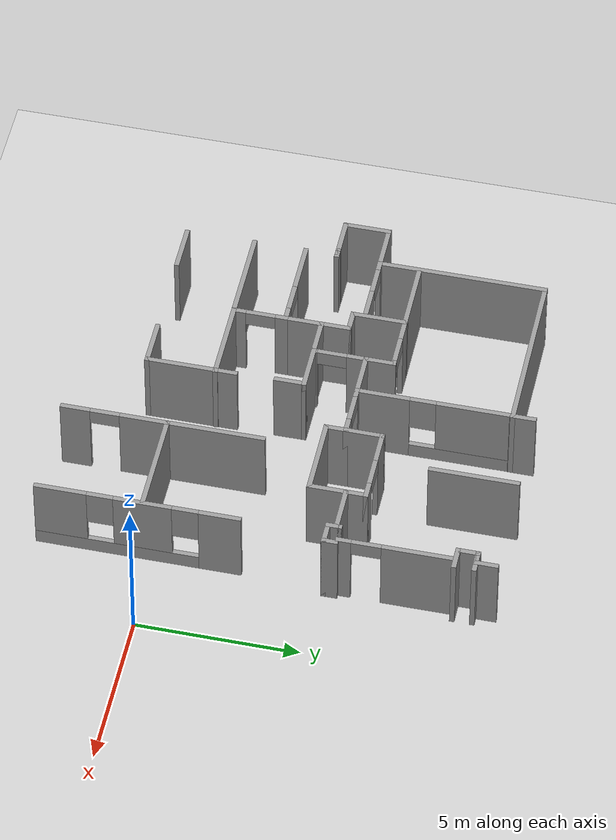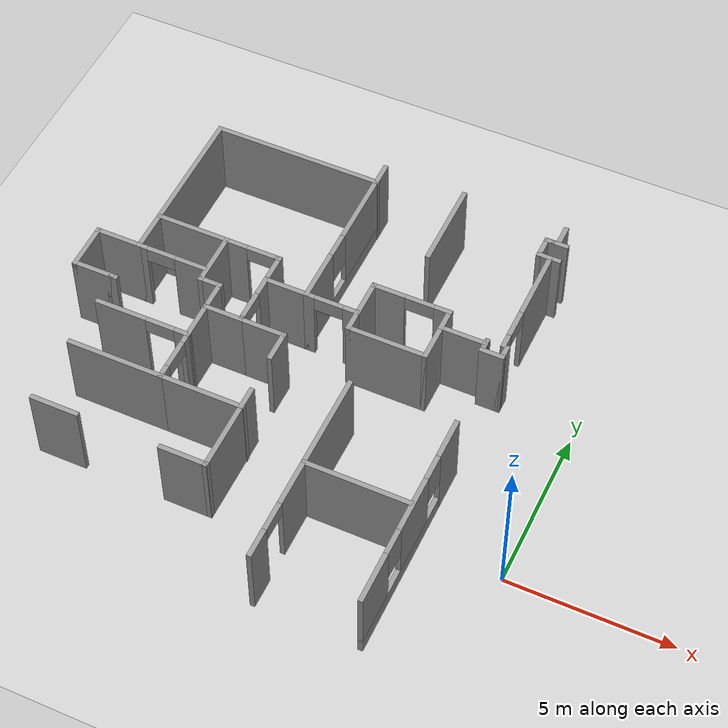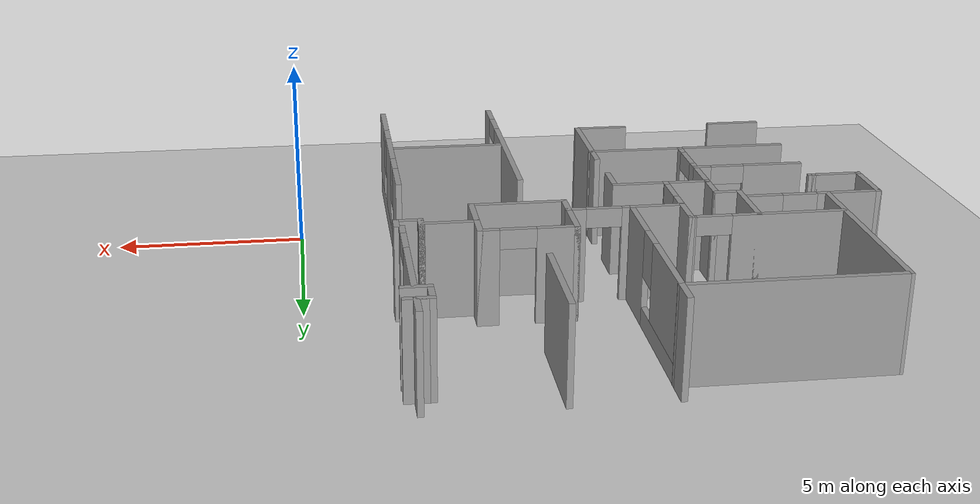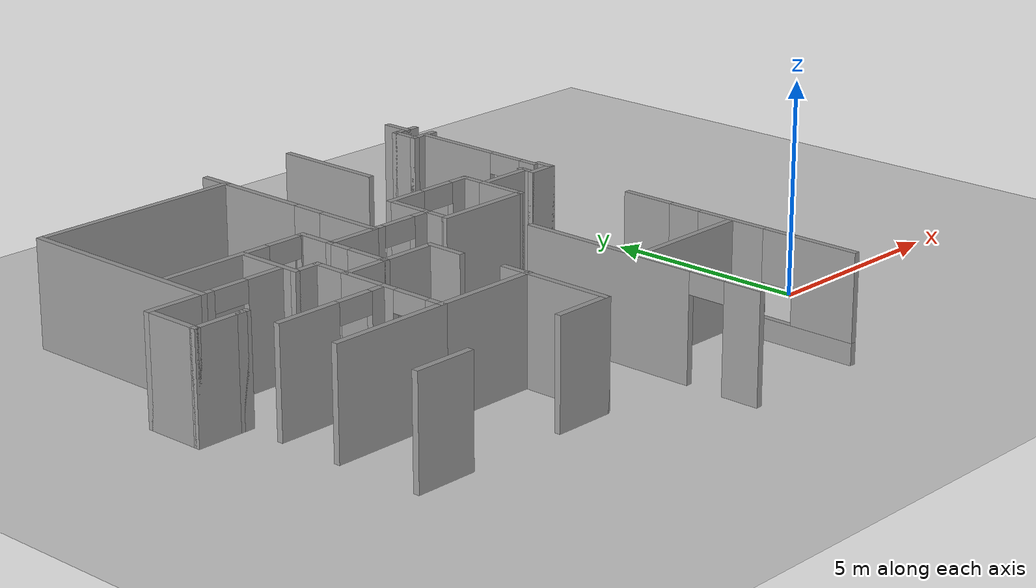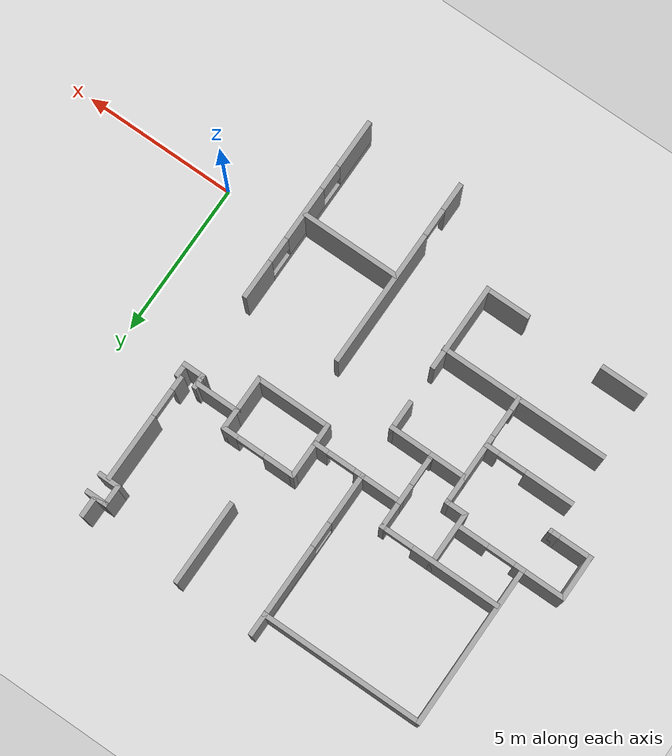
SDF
<sdf version="1.6">
 <world name="default">
  <model name="ground_plane">
   <static>1</static>
   <link name="link">
    <collision name="collision">
     <geometry><plane><normal>0 0 1</normal><size>100 100</size></plane></geometry>
     <surface><friction><ode><mu>100</mu><mu2>50</mu2></ode></friction></surface>
    </collision>
    <visual name="visual">
     <cast_shadows>0</cast_shadows>
     <geometry><plane><normal>0 0 1</normal><size>100 100</size></plane></geometry>
     <material>
      <script><uri>file://media/materials/scripts/gazebo.material</uri><name>Gazebo/Grey</name></script>
     </material>
    </visual>
   </link>
  </model>
  <model name="office02">
   <pose>-0.0751 -0.58893 0 0 -0 0</pose>
   <link name="Wall_0">
    <collision name="Wall_0_Collision">
     <geometry><box><size>5.25 0.15 2.5</size></box></geometry>
     <pose>0 0 1.25 0 -0 0</pose>
    </collision>
    <visual name="Wall_0_Visual">
     <pose>0 0 1.25 0 -0 0</pose>
     <geometry><box><size>5.25 0.15 2.5</size></box></geometry>
     <material>
      <script><uri>file://media/materials/scripts/gazebo.material</uri><name>Gazebo/Grey</name></script>
      <ambient>1 1 1 1</ambient>
     </material>
     <meta><layer>0</layer></meta>
    </visual>
    <pose>-13.3071 7.70371 0 0 -0 -1.5708</pose>
   </link>
   <link name="Wall_1">
    <collision name="Wall_1_Collision">
     <geometry><box><size>1.5 0.15 2.5</size></box></geometry>
     <pose>0 0 1.25 0 -0 0</pose>
    </collision>
    <visual name="Wall_1_Visual">
     <pose>0 0 1.25 0 -0 0</pose>
     <geometry><box><size>1.5 0.15 2.5</size></box></geometry>
     <material>
      <script><uri>file://media/materials/scripts/gazebo.material</uri><name>Gazebo/Grey</name></script>
      <ambient>1 1 1 1</ambient>
     </material>
     <meta><layer>0</layer></meta>
    </visual>
    <pose>-13.9821 5.15371 0 0 -0 3.14159</pose>
   </link>
   <link name="Wall_2">
    <collision name="Wall_2_Collision">
     <geometry><box><size>1.5 0.15 2.5</size></box></geometry>
     <pose>0 0 1.25 0 -0 0</pose>
    </collision>
    <visual name="Wall_2_Visual">
     <pose>0 0 1.25 0 -0 0</pose>
     <geometry><box><size>1.5 0.15 2.5</size></box></geometry>
     <material>
      <script><uri>file://media/materials/scripts/gazebo.material</uri><name>Gazebo/Grey</name></script>
      <ambient>1 1 1 1</ambient>
     </material>
     <meta><layer>0</layer></meta>
    </visual>
    <pose>-14.6571 4.47871 0 0 -0 -1.5708</pose>
   </link>
   <link name="Wall_21">
    <collision name="Wall_21_Collision">
     <geometry><box><size>0.801164 0.15 2.5</size></box></geometry>
     <pose>0 0 1.25 0 -0 0</pose>
    </collision>
    <visual name="Wall_21_Visual">
     <pose>0 0 1.25 0 -0 0</pose>
     <geometry><box><size>0.801164 0.15 2.5</size></box></geometry>
     <material>
      <script><uri>file://media/materials/scripts/gazebo.material</uri><name>Gazebo/Grey</name></script>
      <ambient>1 1 1 1</ambient>
     </material>
     <meta><layer>0</layer></meta>
    </visual>
    <pose>-8.11981 10.5707 0 0 -0 -1.5708</pose>
   </link>
   <link name="Wall_22">
    <collision name="Wall_22_Collision">
     <geometry><box><size>5.25 0.15 2.5</size></box></geometry>
     <pose>0 0 1.25 0 -0 0</pose>
    </collision>
    <visual name="Wall_22_Visual">
     <pose>0 0 1.25 0 -0 0</pose>
     <geometry><box><size>5.25 0.15 2.5</size></box></geometry>
     <material>
      <script><uri>file://media/materials/scripts/gazebo.material</uri><name>Gazebo/Grey</name></script>
      <ambient>1 1 1 1</ambient>
     </material>
     <meta><layer>0</layer></meta>
    </visual>
    <pose>-10.6698 10.2604 0 0 -0 3.14159</pose>
   </link>
   <link name="Wall_232">
    <pose>-7.32824 5.53282 0 0 -0 0</pose>
    <visual name="Wall_232_Visual_0">
     <pose>-0.707202 0 1.25 0 -0 0</pose>
     <geometry><box><size>0.335596 0.15 2.5</size></box></geometry>
     <material>
      <script><uri>file://media/materials/scripts/gazebo.material</uri><name>Gazebo/Grey</name></script>
      <ambient>1 1 1 1</ambient>
     </material>
     <meta><layer>0</layer></meta>
    </visual>
    <collision name="Wall_232_Collision_0">
     <geometry><box><size>0.335596 0.15 2.5</size></box></geometry>
     <pose>-0.707202 0 1.25 0 -0 0</pose>
    </collision>
    <visual name="Wall_232_Visual_1">
     <pose>0.617798 0 1.25 0 -0 0</pose>
     <geometry><box><size>0.514404 0.15 2.5</size></box></geometry>
     <material>
      <script><uri>file://media/materials/scripts/gazebo.material</uri><name>Gazebo/Grey</name></script>
      <ambient>1 1 1 1</ambient>
     </material>
     <meta><layer>0</layer></meta>
    </visual>
    <collision name="Wall_232_Collision_1">
     <geometry><box><size>0.514404 0.15 2.5</size></box></geometry>
     <pose>0.617798 0 1.25 0 -0 0</pose>
    </collision>
    <visual name="Wall_232_Visual_2">
     <pose>-0.089404 0 2.25 0 -0 0</pose>
     <geometry><box><size>0.9 0.15 0.5</size></box></geometry>
     <material>
      <script><uri>file://media/materials/scripts/gazebo.material</uri><name>Gazebo/Grey</name></script>
      <ambient>1 1 1 1</ambient>
     </material>
     <meta><layer>0</layer></meta>
    </visual>
    <collision name="Wall_232_Collision_2">
     <geometry><box><size>0.9 0.15 0.5</size></box></geometry>
     <pose>-0.089404 0 2.25 0 -0 0</pose>
    </collision>
   </link>
   <link name="Wall_233">
    <collision name="Wall_233_Collision">
     <geometry><box><size>0.75 0.15 2.5</size></box></geometry>
     <pose>0 0 1.25 0 -0 0</pose>
    </collision>
    <visual name="Wall_233_Visual">
     <pose>0 0 1.25 0 -0 0</pose>
     <geometry><box><size>0.75 0.15 2.5</size></box></geometry>
     <material>
      <script><uri>file://media/materials/scripts/gazebo.material</uri><name>Gazebo/Grey</name></script>
      <ambient>1 1 1 1</ambient>
     </material>
     <meta><layer>0</layer></meta>
    </visual>
    <pose>-6.52824 5.23282 0 0 -0 -1.5708</pose>
   </link>
   <link name="Wall_234">
    <collision name="Wall_234_Collision">
     <geometry><box><size>2.5 0.15 2.5</size></box></geometry>
     <pose>0 0 1.25 0 -0 0</pose>
    </collision>
    <visual name="Wall_234_Visual">
     <pose>0 0 1.25 0 -0 0</pose>
     <geometry><box><size>2.5 0.15 2.5</size></box></geometry>
     <material>
      <script><uri>file://media/materials/scripts/gazebo.material</uri><name>Gazebo/Grey</name></script>
      <ambient>1 1 1 1</ambient>
     </material>
     <meta><layer>0</layer></meta>
    </visual>
    <pose>-5.35324 4.93282 0 0 -0 0</pose>
   </link>
   <link name="Wall_235">
    <collision name="Wall_235_Collision">
     <geometry><box><size>1.25 0.15 2.5</size></box></geometry>
     <pose>0 0 1.25 0 -0 0</pose>
    </collision>
    <visual name="Wall_235_Visual">
     <pose>0 0 1.25 0 -0 0</pose>
     <geometry><box><size>1.25 0.15 2.5</size></box></geometry>
     <material>
      <script><uri>file://media/materials/scripts/gazebo.material</uri><name>Gazebo/Grey</name></script>
      <ambient>1 1 1 1</ambient>
     </material>
     <meta><layer>0</layer></meta>
    </visual>
    <pose>-4.17824 5.48282 0 0 -0 1.5708</pose>
   </link>
   <link name="Wall_236">
    <collision name="Wall_236_Collision">
     <geometry><box><size>1.5 0.15 2.5</size></box></geometry>
     <pose>0 0 1.25 0 -0 0</pose>
    </collision>
    <visual name="Wall_236_Visual">
     <pose>0 0 1.25 0 -0 0</pose>
     <geometry><box><size>1.5 0.15 2.5</size></box></geometry>
     <material>
      <script><uri>file://media/materials/scripts/gazebo.material</uri><name>Gazebo/Grey</name></script>
      <ambient>1 1 1 1</ambient>
     </material>
     <meta><layer>0</layer></meta>
    </visual>
    <pose>-3.50324 6.03282 0 0 -0 0</pose>
   </link>
   <link name="Wall_237">
    <collision name="Wall_237_Collision">
     <geometry><box><size>0.25 0.15 2.5</size></box></geometry>
     <pose>0 0 1.25 0 -0 0</pose>
    </collision>
    <visual name="Wall_237_Visual">
     <pose>0 0 1.25 0 -0 0</pose>
     <geometry><box><size>0.25 0.15 2.5</size></box></geometry>
     <material>
      <script><uri>file://media/materials/scripts/gazebo.material</uri><name>Gazebo/Grey</name></script>
      <ambient>1 1 1 1</ambient>
     </material>
     <meta><layer>0</layer></meta>
    </visual>
    <pose>-2.82824 6.08282 0 0 -0 1.5708</pose>
   </link>
   <link name="Wall_241">
    <collision name="Wall_241_Collision">
     <geometry><box><size>0.5 0.15 2.5</size></box></geometry>
     <pose>0 0 1.25 0 -0 0</pose>
    </collision>
    <visual name="Wall_241_Visual">
     <pose>0 0 1.25 0 -0 0</pose>
     <geometry><box><size>0.5 0.15 2.5</size></box></geometry>
     <material>
      <script><uri>file://media/materials/scripts/gazebo.material</uri><name>Gazebo/Grey</name></script>
      <ambient>1 1 1 1</ambient>
     </material>
     <meta><layer>0</layer></meta>
    </visual>
    <pose>-2.82824 5.95782 0 0 -0 1.5708</pose>
   </link>
   <link name="Wall_266">
    <collision name="Wall_266_Collision">
     <geometry><box><size>0.75 0.15 2.5</size></box></geometry>
     <pose>0 0 1.25 0 -0 0</pose>
    </collision>
    <visual name="Wall_266_Visual">
     <pose>0 0 1.25 0 -0 0</pose>
     <geometry><box><size>0.75 0.15 2.5</size></box></geometry>
     <material>
      <script><uri>file://media/materials/scripts/gazebo.material</uri><name>Gazebo/Grey</name></script>
      <ambient>1 1 1 1</ambient>
     </material>
     <meta><layer>0</layer></meta>
    </visual>
    <pose>-2.34465 10.5772 0 0 -0 -1.5708</pose>
   </link>
   <link name="Wall_267">
    <collision name="Wall_267_Collision">
     <geometry><box><size>0.5 0.15 2.5</size></box></geometry>
     <pose>0 0 1.25 0 -0 0</pose>
    </collision>
    <visual name="Wall_267_Visual">
     <pose>0 0 1.25 0 -0 0</pose>
     <geometry><box><size>0.5 0.15 2.5</size></box></geometry>
     <material>
      <script><uri>file://media/materials/scripts/gazebo.material</uri><name>Gazebo/Grey</name></script>
      <ambient>1 1 1 1</ambient>
     </material>
     <meta><layer>0</layer></meta>
    </visual>
    <pose>-2.51965 10.2772 0 0 -0 3.14159</pose>
   </link>
   <link name="Wall_268">
    <collision name="Wall_268_Collision">
     <geometry><box><size>0.75 0.15 2.5</size></box></geometry>
     <pose>0 0 1.25 0 -0 0</pose>
    </collision>
    <visual name="Wall_268_Visual">
     <pose>0 0 1.25 0 -0 0</pose>
     <geometry><box><size>0.75 0.15 2.5</size></box></geometry>
     <material>
      <script><uri>file://media/materials/scripts/gazebo.material</uri><name>Gazebo/Grey</name></script>
      <ambient>1 1 1 1</ambient>
     </material>
     <meta><layer>0</layer></meta>
    </visual>
    <pose>-2.39465 10.2772 0 0 -0 0</pose>
   </link>
   <link name="Wall_27">
    <pose>-11.3335 6.38282 0 0 -0 0</pose>
    <visual name="Wall_27_Visual_0">
     <pose>-0.546613 0 1.25 0 -0 0</pose>
     <geometry><box><size>2.90677 0.15 2.5</size></box></geometry>
     <material>
      <script><uri>file://media/materials/scripts/gazebo.material</uri><name>Gazebo/Grey</name></script>
      <ambient>1 1 1 1</ambient>
     </material>
     <meta><layer>0</layer></meta>
    </visual>
    <collision name="Wall_27_Collision_0">
     <geometry><box><size>2.90677 0.15 2.5</size></box></geometry>
     <pose>-0.546613 0 1.25 0 -0 0</pose>
    </collision>
    <visual name="Wall_27_Visual_1">
     <pose>1.90339 0 1.25 0 -0 0</pose>
     <geometry><box><size>0.193226 0.15 2.5</size></box></geometry>
     <material>
      <script><uri>file://media/materials/scripts/gazebo.material</uri><name>Gazebo/Grey</name></script>
      <ambient>1 1 1 1</ambient>
     </material>
     <meta><layer>0</layer></meta>
    </visual>
    <collision name="Wall_27_Collision_1">
     <geometry><box><size>0.193226 0.15 2.5</size></box></geometry>
     <pose>1.90339 0 1.25 0 -0 0</pose>
    </collision>
    <visual name="Wall_27_Visual_2">
     <pose>1.35677 0 2.25 0 -0 0</pose>
     <geometry><box><size>0.9 0.15 0.5</size></box></geometry>
     <material>
      <script><uri>file://media/materials/scripts/gazebo.material</uri><name>Gazebo/Grey</name></script>
      <ambient>1 1 1 1</ambient>
     </material>
     <meta><layer>0</layer></meta>
    </visual>
    <collision name="Wall_27_Collision_2">
     <geometry><box><size>0.9 0.15 0.5</size></box></geometry>
     <pose>1.35677 0 2.25 0 -0 0</pose>
    </collision>
   </link>
   <link name="Wall_270">
    <collision name="Wall_270_Collision">
     <geometry><box><size>0.75 0.15 2.5</size></box></geometry>
     <pose>0 0 1.25 0 -0 0</pose>
    </collision>
    <visual name="Wall_270_Visual">
     <pose>0 0 1.25 0 -0 0</pose>
     <geometry><box><size>0.75 0.15 2.5</size></box></geometry>
     <material>
      <script><uri>file://media/materials/scripts/gazebo.material</uri><name>Gazebo/Grey</name></script>
      <ambient>1 1 1 1</ambient>
     </material>
     <meta><layer>0</layer></meta>
    </visual>
    <pose>-2.39465 9.67721 0 0 -0 3.14159</pose>
   </link>
   <link name="Wall_271">
    <collision name="Wall_271_Collision">
     <geometry><box><size>0.75 0.15 2.5</size></box></geometry>
     <pose>0 0 1.25 0 -0 0</pose>
    </collision>
    <visual name="Wall_271_Visual">
     <pose>0 0 1.25 0 -0 0</pose>
     <geometry><box><size>0.75 0.15 2.5</size></box></geometry>
     <material>
      <script><uri>file://media/materials/scripts/gazebo.material</uri><name>Gazebo/Grey</name></script>
      <ambient>1 1 1 1</ambient>
     </material>
     <meta><layer>0</layer></meta>
    </visual>
    <pose>-2.69465 9.97721 0 0 -0 1.5708</pose>
   </link>
   <link name="Wall_276">
    <pose>-2.3487 7.89087 0 0 -0 -1.5708</pose>
    <visual name="Wall_276_Visual_0">
     <pose>-0.684647 0 1.25 0 -0 0</pose>
     <geometry><box><size>2.20171 0.15 2.5</size></box></geometry>
     <material>
      <script><uri>file://media/materials/scripts/gazebo.material</uri><name>Gazebo/Grey</name></script>
      <ambient>1 1 1 1</ambient>
     </material>
     <meta><layer>0</layer></meta>
    </visual>
    <collision name="Wall_276_Collision_0">
     <geometry><box><size>2.20171 0.15 2.5</size></box></geometry>
     <pose>-0.684647 0 1.25 0 -0 0</pose>
    </collision>
    <visual name="Wall_276_Visual_1">
     <pose>1.55085 0 1.25 0 -0 0</pose>
     <geometry><box><size>0.469293 0.15 2.5</size></box></geometry>
     <material>
      <script><uri>file://media/materials/scripts/gazebo.material</uri><name>Gazebo/Grey</name></script>
      <ambient>1 1 1 1</ambient>
     </material>
     <meta><layer>0</layer></meta>
    </visual>
    <collision name="Wall_276_Collision_1">
     <geometry><box><size>0.469293 0.15 2.5</size></box></geometry>
     <pose>1.55085 0 1.25 0 -0 0</pose>
    </collision>
    <visual name="Wall_276_Visual_2">
     <pose>0.866207 0 2.25 0 -0 0</pose>
     <geometry><box><size>0.9 0.15 0.5</size></box></geometry>
     <material>
      <script><uri>file://media/materials/scripts/gazebo.material</uri><name>Gazebo/Grey</name></script>
      <ambient>1 1 1 1</ambient>
     </material>
     <meta><layer>0</layer></meta>
    </visual>
    <collision name="Wall_276_Collision_2">
     <geometry><box><size>0.9 0.15 0.5</size></box></geometry>
     <pose>0.866207 0 2.25 0 -0 0</pose>
    </collision>
   </link>
   <link name="Wall_28">
    <collision name="Wall_28_Collision">
     <geometry><box><size>1 0.15 2.5</size></box></geometry>
     <pose>0 0 1.25 0 -0 0</pose>
    </collision>
    <visual name="Wall_28_Visual">
     <pose>0 0 1.25 0 -0 0</pose>
     <geometry><box><size>1 0.15 2.5</size></box></geometry>
     <material>
      <script><uri>file://media/materials/scripts/gazebo.material</uri><name>Gazebo/Grey</name></script>
      <ambient>1 1 1 1</ambient>
     </material>
     <meta><layer>0</layer></meta>
    </visual>
    <pose>-9.40845 5.95782 0 0 -0 -1.5708</pose>
   </link>
   <link name="Wall_280">
    <collision name="Wall_280_Collision">
     <geometry><box><size>0.75 0.15 2.5</size></box></geometry>
     <pose>0 0 1.25 0 -0 0</pose>
    </collision>
    <visual name="Wall_280_Visual">
     <pose>0 0 1.25 0 -0 0</pose>
     <geometry><box><size>0.75 0.15 2.5</size></box></geometry>
     <material>
      <script><uri>file://media/materials/scripts/gazebo.material</uri><name>Gazebo/Grey</name></script>
      <ambient>1 1 1 1</ambient>
     </material>
     <meta><layer>0</layer></meta>
    </visual>
    <pose>-2.52824 5.78282 0 0 -0 0</pose>
   </link>
   <link name="Wall_281">
    <collision name="Wall_281_Collision">
     <geometry><box><size>0.5 0.15 2.5</size></box></geometry>
     <pose>0 0 1.25 0 -0 0</pose>
    </collision>
    <visual name="Wall_281_Visual">
     <pose>0 0 1.25 0 -0 0</pose>
     <geometry><box><size>0.5 0.15 2.5</size></box></geometry>
     <material>
      <script><uri>file://media/materials/scripts/gazebo.material</uri><name>Gazebo/Grey</name></script>
      <ambient>1 1 1 1</ambient>
     </material>
     <meta><layer>0</layer></meta>
    </visual>
    <pose>-2.22824 5.95782 0 0 -0 1.5708</pose>
   </link>
   <link name="Wall_283">
    <collision name="Wall_283_Collision">
     <geometry><box><size>1.25 0.15 2.5</size></box></geometry>
     <pose>0 0 1.25 0 -0 0</pose>
    </collision>
    <visual name="Wall_283_Visual">
     <pose>0 0 1.25 0 -0 0</pose>
     <geometry><box><size>1.25 0.15 2.5</size></box></geometry>
     <material>
      <script><uri>file://media/materials/scripts/gazebo.material</uri><name>Gazebo/Grey</name></script>
      <ambient>1 1 1 1</ambient>
     </material>
     <meta><layer>0</layer></meta>
    </visual>
    <pose>-6.52824 6.08282 0 0 -0 1.5708</pose>
   </link>
   <link name="Wall_284">
    <pose>-5.35324 6.63282 0 0 -0 0</pose>
    <visual name="Wall_284_Visual_0">
     <pose>-0.721303 0 1.25 0 -0 0</pose>
     <geometry><box><size>1.0574 0.15 2.5</size></box></geometry>
     <material>
      <script><uri>file://media/materials/scripts/gazebo.material</uri><name>Gazebo/Grey</name></script>
      <ambient>1 1 1 1</ambient>
     </material>
     <meta><layer>0</layer></meta>
    </visual>
    <collision name="Wall_284_Collision_0">
     <geometry><box><size>1.0574 0.15 2.5</size></box></geometry>
     <pose>-0.721303 0 1.25 0 -0 0</pose>
    </collision>
    <visual name="Wall_284_Visual_1">
     <pose>0.978697 0 1.25 0 -0 0</pose>
     <geometry><box><size>0.542605 0.15 2.5</size></box></geometry>
     <material>
      <script><uri>file://media/materials/scripts/gazebo.material</uri><name>Gazebo/Grey</name></script>
      <ambient>1 1 1 1</ambient>
     </material>
     <meta><layer>0</layer></meta>
    </visual>
    <collision name="Wall_284_Collision_1">
     <geometry><box><size>0.542605 0.15 2.5</size></box></geometry>
     <pose>0.978697 0 1.25 0 -0 0</pose>
    </collision>
    <visual name="Wall_284_Visual_2">
     <pose>0.257395 0 2.25 0 -0 0</pose>
     <geometry><box><size>0.9 0.15 0.5</size></box></geometry>
     <material>
      <script><uri>file://media/materials/scripts/gazebo.material</uri><name>Gazebo/Grey</name></script>
      <ambient>1 1 1 1</ambient>
     </material>
     <meta><layer>0</layer></meta>
    </visual>
    <collision name="Wall_284_Collision_2">
     <geometry><box><size>0.9 0.15 0.5</size></box></geometry>
     <pose>0.257395 0 2.25 0 -0 0</pose>
    </collision>
   </link>
   <link name="Wall_285">
    <collision name="Wall_285_Collision">
     <geometry><box><size>0.75 0.15 2.5</size></box></geometry>
     <pose>0 0 1.25 0 -0 0</pose>
    </collision>
    <visual name="Wall_285_Visual">
     <pose>0 0 1.25 0 -0 0</pose>
     <geometry><box><size>0.75 0.15 2.5</size></box></geometry>
     <material>
      <script><uri>file://media/materials/scripts/gazebo.material</uri><name>Gazebo/Grey</name></script>
      <ambient>1 1 1 1</ambient>
     </material>
     <meta><layer>0</layer></meta>
    </visual>
    <pose>-4.17824 6.33282 0 0 -0 -1.5708</pose>
   </link>
   <link name="Wall_287">
    <collision name="Wall_287_Collision">
     <geometry><box><size>2.75 0.15 2.5</size></box></geometry>
     <pose>0 0 1.25 0 -0 0</pose>
    </collision>
    <visual name="Wall_287_Visual">
     <pose>0 0 1.25 0 -0 0</pose>
     <geometry><box><size>2.75 0.15 2.5</size></box></geometry>
     <material>
      <script><uri>file://media/materials/scripts/gazebo.material</uri><name>Gazebo/Grey</name></script>
      <ambient>1 1 1 1</ambient>
     </material>
     <meta><layer>0</layer></meta>
    </visual>
    <pose>-5.57076 9.59432 0 0 -0 -1.5708</pose>
   </link>
   <link name="Wall_29">
    <collision name="Wall_29_Collision">
     <geometry><box><size>1.40695 0.15 2.5</size></box></geometry>
     <pose>0 0 1.25 0 -0 0</pose>
    </collision>
    <visual name="Wall_29_Visual">
     <pose>0 0 1.25 0 -0 0</pose>
     <geometry><box><size>1.40695 0.15 2.5</size></box></geometry>
     <material>
      <script><uri>file://media/materials/scripts/gazebo.material</uri><name>Gazebo/Grey</name></script>
      <ambient>1 1 1 1</ambient>
     </material>
     <meta><layer>0</layer></meta>
    </visual>
    <pose>-8.77998 5.53282 0 0 -0 0</pose>
   </link>
   <link name="Wall_290">
    <pose>-5.67673 0.155497 0 0 -0 -1.5708</pose>
    <visual name="Wall_290_Visual_0">
     <pose>-0.907056 0 1.25 0 -0 0</pose>
     <geometry><box><size>4.43589 0.15 2.5</size></box></geometry>
     <material>
      <script><uri>file://media/materials/scripts/gazebo.material</uri><name>Gazebo/Grey</name></script>
      <ambient>1 1 1 1</ambient>
     </material>
     <meta><layer>0</layer></meta>
    </visual>
    <collision name="Wall_290_Collision_0">
     <geometry><box><size>4.43589 0.15 2.5</size></box></geometry>
     <pose>-0.907056 0 1.25 0 -0 0</pose>
    </collision>
    <visual name="Wall_290_Visual_1">
     <pose>2.66794 0 1.25 0 -0 0</pose>
     <geometry><box><size>0.914112 0.15 2.5</size></box></geometry>
     <material>
      <script><uri>file://media/materials/scripts/gazebo.material</uri><name>Gazebo/Grey</name></script>
      <ambient>1 1 1 1</ambient>
     </material>
     <meta><layer>0</layer></meta>
    </visual>
    <collision name="Wall_290_Collision_1">
     <geometry><box><size>0.914112 0.15 2.5</size></box></geometry>
     <pose>2.66794 0 1.25 0 -0 0</pose>
    </collision>
    <visual name="Wall_290_Visual_2">
     <pose>1.76089 0 2.25 0 -0 0</pose>
     <geometry><box><size>0.9 0.15 0.5</size></box></geometry>
     <material>
      <script><uri>file://media/materials/scripts/gazebo.material</uri><name>Gazebo/Grey</name></script>
      <ambient>1 1 1 1</ambient>
     </material>
     <meta><layer>0</layer></meta>
    </visual>
    <collision name="Wall_290_Collision_2">
     <geometry><box><size>0.9 0.15 0.5</size></box></geometry>
     <pose>1.76089 0 2.25 0 -0 0</pose>
    </collision>
   </link>
   <link name="Wall_3">
    <collision name="Wall_3_Collision">
     <geometry><box><size>1.25 0.15 2.5</size></box></geometry>
     <pose>0 0 1.25 0 -0 0</pose>
    </collision>
    <visual name="Wall_3_Visual">
     <pose>0 0 1.25 0 -0 0</pose>
     <geometry><box><size>1.25 0.15 2.5</size></box></geometry>
     <material>
      <script><uri>file://media/materials/scripts/gazebo.material</uri><name>Gazebo/Grey</name></script>
      <ambient>1 1 1 1</ambient>
     </material>
     <meta><layer>0</layer></meta>
    </visual>
    <pose>-14.1071 3.80371 0 0 -0 0</pose>
   </link>
   <link name="Wall_30">
    <pose>-8.12824 7.83282 0 0 -0 1.5708</pose>
    <visual name="Wall_30_Visual_0">
     <pose>-1.53214 0 1.25 0 -0 0</pose>
     <geometry><box><size>1.68571 0.15 2.5</size></box></geometry>
     <material>
      <script><uri>file://media/materials/scripts/gazebo.material</uri><name>Gazebo/Grey</name></script>
      <ambient>1 1 1 1</ambient>
     </material>
     <meta><layer>0</layer></meta>
    </visual>
    <collision name="Wall_30_Collision_0">
     <geometry><box><size>1.68571 0.15 2.5</size></box></geometry>
     <pose>-1.53214 0 1.25 0 -0 0</pose>
    </collision>
    <visual name="Wall_30_Visual_1">
     <pose>0.842857 0 0.25 0 -0 0</pose>
     <geometry><box><size>3.06429 0.15 0.5</size></box></geometry>
     <material>
      <script><uri>file://media/materials/scripts/gazebo.material</uri><name>Gazebo/Grey</name></script>
      <ambient>1 1 1 1</ambient>
     </material>
     <meta><layer>0</layer></meta>
    </visual>
    <collision name="Wall_30_Collision_1">
     <geometry><box><size>3.06429 0.15 0.5</size></box></geometry>
     <pose>0.842857 0 0.25 0 -0 0</pose>
    </collision>
    <visual name="Wall_30_Visual_2">
     <pose>1.24286 0 1.5 0 -0 0</pose>
     <geometry><box><size>2.26429 0.15 2</size></box></geometry>
     <material>
      <script><uri>file://media/materials/scripts/gazebo.material</uri><name>Gazebo/Grey</name></script>
      <ambient>1 1 1 1</ambient>
     </material>
     <meta><layer>0</layer></meta>
    </visual>
    <collision name="Wall_30_Collision_2">
     <geometry><box><size>2.26429 0.15 2</size></box></geometry>
     <pose>1.24286 0 1.5 0 -0 0</pose>
    </collision>
    <visual name="Wall_30_Visual_3">
     <pose>-0.289286 0 1.9 0 -0 0</pose>
     <geometry><box><size>0.8 0.15 1.2</size></box></geometry>
     <material>
      <script><uri>file://media/materials/scripts/gazebo.material</uri><name>Gazebo/Grey</name></script>
      <ambient>1 1 1 1</ambient>
     </material>
     <meta><layer>0</layer></meta>
    </visual>
    <collision name="Wall_30_Collision_3">
     <geometry><box><size>0.8 0.15 1.2</size></box></geometry>
     <pose>-0.289286 0 1.9 0 -0 0</pose>
    </collision>
   </link>
   <link name="Wall_309">
    <pose>-2.49025 0.138825 0 0 -0 -1.5708</pose>
    <visual name="Wall_309_Visual_0">
     <pose>-2.48209 0 1.25 0 -0 0</pose>
     <geometry><box><size>1.28582 0.15 2.5</size></box></geometry>
     <material>
      <script><uri>file://media/materials/scripts/gazebo.material</uri><name>Gazebo/Grey</name></script>
      <ambient>1 1 1 1</ambient>
     </material>
     <meta><layer>0</layer></meta>
    </visual>
    <collision name="Wall_309_Collision_0">
     <geometry><box><size>1.28582 0.15 2.5</size></box></geometry>
     <pose>-2.48209 0 1.25 0 -0 0</pose>
    </collision>
    <visual name="Wall_309_Visual_1">
     <pose>0.642909 0 0.25 0 -0 0</pose>
     <geometry><box><size>4.96418 0.15 0.5</size></box></geometry>
     <material>
      <script><uri>file://media/materials/scripts/gazebo.material</uri><name>Gazebo/Grey</name></script>
      <ambient>1 1 1 1</ambient>
     </material>
     <meta><layer>0</layer></meta>
    </visual>
    <collision name="Wall_309_Collision_1">
     <geometry><box><size>4.96418 0.15 0.5</size></box></geometry>
     <pose>0.642909 0 0.25 0 -0 0</pose>
    </collision>
    <visual name="Wall_309_Visual_2">
     <pose>-0.155122 0 1.5 0 -0 0</pose>
     <geometry><box><size>1.76812 0.15 2</size></box></geometry>
     <material>
      <script><uri>file://media/materials/scripts/gazebo.material</uri><name>Gazebo/Grey</name></script>
      <ambient>1 1 1 1</ambient>
     </material>
     <meta><layer>0</layer></meta>
    </visual>
    <collision name="Wall_309_Collision_2">
     <geometry><box><size>1.76812 0.15 2</size></box></geometry>
     <pose>-0.155122 0 1.5 0 -0 0</pose>
    </collision>
    <visual name="Wall_309_Visual_3">
     <pose>2.32697 0 1.5 0 -0 0</pose>
     <geometry><box><size>1.59606 0.15 2</size></box></geometry>
     <material>
      <script><uri>file://media/materials/scripts/gazebo.material</uri><name>Gazebo/Grey</name></script>
      <ambient>1 1 1 1</ambient>
     </material>
     <meta><layer>0</layer></meta>
    </visual>
    <collision name="Wall_309_Collision_3">
     <geometry><box><size>1.59606 0.15 2</size></box></geometry>
     <pose>2.32697 0 1.5 0 -0 0</pose>
    </collision>
    <visual name="Wall_309_Visual_4">
     <pose>-1.43918 0 1.9 0 -0 0</pose>
     <geometry><box><size>0.8 0.15 1.2</size></box></geometry>
     <material>
      <script><uri>file://media/materials/scripts/gazebo.material</uri><name>Gazebo/Grey</name></script>
      <ambient>1 1 1 1</ambient>
     </material>
     <meta><layer>0</layer></meta>
    </visual>
    <collision name="Wall_309_Collision_4">
     <geometry><box><size>0.8 0.15 1.2</size></box></geometry>
     <pose>-1.43918 0 1.9 0 -0 0</pose>
    </collision>
    <visual name="Wall_309_Visual_5">
     <pose>1.12894 0 1.9 0 -0 0</pose>
     <geometry><box><size>0.8 0.15 1.2</size></box></geometry>
     <material>
      <script><uri>file://media/materials/scripts/gazebo.material</uri><name>Gazebo/Grey</name></script>
      <ambient>1 1 1 1</ambient>
     </material>
     <meta><layer>0</layer></meta>
    </visual>
    <collision name="Wall_309_Collision_5">
     <geometry><box><size>0.8 0.15 1.2</size></box></geometry>
     <pose>1.12894 0 1.9 0 -0 0</pose>
    </collision>
   </link>
   <link name="Wall_313">
    <collision name="Wall_313_Collision">
     <geometry><box><size>3.25 0.15 2.5</size></box></geometry>
     <pose>0 0 1.25 0 -0 0</pose>
    </collision>
    <visual name="Wall_313_Visual">
     <pose>0 0 1.25 0 -0 0</pose>
     <geometry><box><size>3.25 0.15 2.5</size></box></geometry>
     <material>
      <script><uri>file://media/materials/scripts/gazebo.material</uri><name>Gazebo/Grey</name></script>
      <ambient>1 1 1 1</ambient>
     </material>
     <meta><layer>0</layer></meta>
    </visual>
    <pose>-4.10851 0.293947 0 0 -0 0</pose>
   </link>
   <link name="Wall_32">
    <pose>-9.40845 4.73282 0 0 -0 -1.5708</pose>
    <visual name="Wall_32_Visual_0">
     <pose>-0.548225 0 1.25 0 -0 0</pose>
     <geometry><box><size>0.653549 0.15 2.5</size></box></geometry>
     <material>
      <script><uri>file://media/materials/scripts/gazebo.material</uri><name>Gazebo/Grey</name></script>
      <ambient>1 1 1 1</ambient>
     </material>
     <meta><layer>0</layer></meta>
    </visual>
    <collision name="Wall_32_Collision_0">
     <geometry><box><size>0.653549 0.15 2.5</size></box></geometry>
     <pose>-0.548225 0 1.25 0 -0 0</pose>
    </collision>
    <visual name="Wall_32_Visual_1">
     <pose>0.776775 0 1.25 0 -0 0</pose>
     <geometry><box><size>0.196451 0.15 2.5</size></box></geometry>
     <material>
      <script><uri>file://media/materials/scripts/gazebo.material</uri><name>Gazebo/Grey</name></script>
      <ambient>1 1 1 1</ambient>
     </material>
     <meta><layer>0</layer></meta>
    </visual>
    <collision name="Wall_32_Collision_1">
     <geometry><box><size>0.196451 0.15 2.5</size></box></geometry>
     <pose>0.776775 0 1.25 0 -0 0</pose>
    </collision>
    <visual name="Wall_32_Visual_2">
     <pose>0.228549 0 2.25 0 -0 0</pose>
     <geometry><box><size>0.9 0.15 0.5</size></box></geometry>
     <material>
      <script><uri>file://media/materials/scripts/gazebo.material</uri><name>Gazebo/Grey</name></script>
      <ambient>1 1 1 1</ambient>
     </material>
     <meta><layer>0</layer></meta>
    </visual>
    <collision name="Wall_32_Collision_2">
     <geometry><box><size>0.9 0.15 0.5</size></box></geometry>
     <pose>0.228549 0 2.25 0 -0 0</pose>
    </collision>
   </link>
   <link name="Wall_33">
    <collision name="Wall_33_Collision">
     <geometry><box><size>1.25 0.15 2.5</size></box></geometry>
     <pose>0 0 1.25 0 -0 0</pose>
    </collision>
    <visual name="Wall_33_Visual">
     <pose>0 0 1.25 0 -0 0</pose>
     <geometry><box><size>1.25 0.15 2.5</size></box></geometry>
     <material>
      <script><uri>file://media/materials/scripts/gazebo.material</uri><name>Gazebo/Grey</name></script>
      <ambient>1 1 1 1</ambient>
     </material>
     <meta><layer>0</layer></meta>
    </visual>
    <pose>-9.95845 3.93282 0 0 -0 3.14159</pose>
   </link>
   <link name="Wall_34">
    <collision name="Wall_34_Collision">
     <geometry><box><size>1 0.15 2.5</size></box></geometry>
     <pose>0 0 1.25 0 -0 0</pose>
    </collision>
    <visual name="Wall_34_Visual">
     <pose>0 0 1.25 0 -0 0</pose>
     <geometry><box><size>1 0.15 2.5</size></box></geometry>
     <material>
      <script><uri>file://media/materials/scripts/gazebo.material</uri><name>Gazebo/Grey</name></script>
      <ambient>1 1 1 1</ambient>
     </material>
     <meta><layer>0</layer></meta>
    </visual>
    <pose>-10.5085 4.35782 0 0 -0 1.5708</pose>
   </link>
   <link name="Wall_35">
    <collision name="Wall_35_Collision">
     <geometry><box><size>0.75 0.15 2.5</size></box></geometry>
     <pose>0 0 1.25 0 -0 0</pose>
    </collision>
    <visual name="Wall_35_Visual">
     <pose>0 0 1.25 0 -0 0</pose>
     <geometry><box><size>0.75 0.15 2.5</size></box></geometry>
     <material>
      <script><uri>file://media/materials/scripts/gazebo.material</uri><name>Gazebo/Grey</name></script>
      <ambient>1 1 1 1</ambient>
     </material>
     <meta><layer>0</layer></meta>
    </visual>
    <pose>-10.8085 4.78282 0 0 -0 3.14159</pose>
   </link>
   <link name="Wall_36">
    <collision name="Wall_36_Collision">
     <geometry><box><size>1.75 0.15 2.5</size></box></geometry>
     <pose>0 0 1.25 0 -0 0</pose>
    </collision>
    <visual name="Wall_36_Visual">
     <pose>0 0 1.25 0 -0 0</pose>
     <geometry><box><size>1.75 0.15 2.5</size></box></geometry>
     <material>
      <script><uri>file://media/materials/scripts/gazebo.material</uri><name>Gazebo/Grey</name></script>
      <ambient>1 1 1 1</ambient>
     </material>
     <meta><layer>0</layer></meta>
    </visual>
    <pose>-11.1085 5.58282 0 0 -0 1.5708</pose>
   </link>
   <link name="Wall_38">
    <pose>-12.2571 5.15371 0 0 -0 0</pose>
    <visual name="Wall_38_Visual_0">
     <pose>-0.949946 0 1.25 0 -0 0</pose>
     <geometry><box><size>0.350108 0.15 2.5</size></box></geometry>
     <material>
      <script><uri>file://media/materials/scripts/gazebo.material</uri><name>Gazebo/Grey</name></script>
      <ambient>1 1 1 1</ambient>
     </material>
     <meta><layer>0</layer></meta>
    </visual>
    <collision name="Wall_38_Collision_0">
     <geometry><box><size>0.350108 0.15 2.5</size></box></geometry>
     <pose>-0.949946 0 1.25 0 -0 0</pose>
    </collision>
    <visual name="Wall_38_Visual_1">
     <pose>0.625054 0 1.25 0 -0 0</pose>
     <geometry><box><size>0.999892 0.15 2.5</size></box></geometry>
     <material>
      <script><uri>file://media/materials/scripts/gazebo.material</uri><name>Gazebo/Grey</name></script>
      <ambient>1 1 1 1</ambient>
     </material>
     <meta><layer>0</layer></meta>
    </visual>
    <collision name="Wall_38_Collision_1">
     <geometry><box><size>0.999892 0.15 2.5</size></box></geometry>
     <pose>0.625054 0 1.25 0 -0 0</pose>
    </collision>
    <visual name="Wall_38_Visual_2">
     <pose>-0.324892 0 2.25 0 -0 0</pose>
     <geometry><box><size>0.9 0.15 0.5</size></box></geometry>
     <material>
      <script><uri>file://media/materials/scripts/gazebo.material</uri><name>Gazebo/Grey</name></script>
      <ambient>1 1 1 1</ambient>
     </material>
     <meta><layer>0</layer></meta>
    </visual>
    <collision name="Wall_38_Collision_2">
     <geometry><box><size>0.9 0.15 0.5</size></box></geometry>
     <pose>-0.324892 0 2.25 0 -0 0</pose>
    </collision>
   </link>
   <link name="Wall_4">
    <collision name="Wall_4_Collision">
     <geometry><box><size>0.25 0.15 2.5</size></box></geometry>
     <pose>0 0 1.25 0 -0 0</pose>
    </collision>
    <visual name="Wall_4_Visual">
     <pose>0 0 1.25 0 -0 0</pose>
     <geometry><box><size>0.25 0.15 2.5</size></box></geometry>
     <material>
      <script><uri>file://media/materials/scripts/gazebo.material</uri><name>Gazebo/Grey</name></script>
      <ambient>1 1 1 1</ambient>
     </material>
     <meta><layer>0</layer></meta>
    </visual>
    <pose>-13.5071 3.80371 0 0 -0 0</pose>
   </link>
   <link name="Wall_41">
    <collision name="Wall_41_Collision">
     <geometry><box><size>1.25 0.15 2.5</size></box></geometry>
     <pose>0 0 1.25 0 -0 0</pose>
    </collision>
    <visual name="Wall_41_Visual">
     <pose>0 0 1.25 0 -0 0</pose>
     <geometry><box><size>1.25 0.15 2.5</size></box></geometry>
     <material>
      <script><uri>file://media/materials/scripts/gazebo.material</uri><name>Gazebo/Grey</name></script>
      <ambient>1 1 1 1</ambient>
     </material>
     <meta><layer>0</layer></meta>
    </visual>
    <pose>-10.5085 3.38282 0 0 -0 1.5708</pose>
   </link>
   <link name="Wall_43">
    <pose>-11.9335 2.83282 0 0 -0 3.14159</pose>
    <visual name="Wall_43_Visual_0">
     <pose>-1.25553 0 1.25 0 -0 0</pose>
     <geometry><box><size>0.488944 0.15 2.5</size></box></geometry>
     <material>
      <script><uri>file://media/materials/scripts/gazebo.material</uri><name>Gazebo/Grey</name></script>
      <ambient>1 1 1 1</ambient>
     </material>
     <meta><layer>0</layer></meta>
    </visual>
    <collision name="Wall_43_Collision_0">
     <geometry><box><size>0.488944 0.15 2.5</size></box></geometry>
     <pose>-1.25553 0 1.25 0 -0 0</pose>
    </collision>
    <visual name="Wall_43_Visual_1">
     <pose>0.694472 0 1.25 0 -0 0</pose>
     <geometry><box><size>1.61106 0.15 2.5</size></box></geometry>
     <material>
      <script><uri>file://media/materials/scripts/gazebo.material</uri><name>Gazebo/Grey</name></script>
      <ambient>1 1 1 1</ambient>
     </material>
     <meta><layer>0</layer></meta>
    </visual>
    <collision name="Wall_43_Collision_1">
     <geometry><box><size>1.61106 0.15 2.5</size></box></geometry>
     <pose>0.694472 0 1.25 0 -0 0</pose>
    </collision>
    <visual name="Wall_43_Visual_2">
     <pose>-0.561056 0 2.25 0 -0 0</pose>
     <geometry><box><size>0.9 0.15 0.5</size></box></geometry>
     <material>
      <script><uri>file://media/materials/scripts/gazebo.material</uri><name>Gazebo/Grey</name></script>
      <ambient>1 1 1 1</ambient>
     </material>
     <meta><layer>0</layer></meta>
    </visual>
    <collision name="Wall_43_Collision_2">
     <geometry><box><size>0.9 0.15 0.5</size></box></geometry>
     <pose>-0.561056 0 2.25 0 -0 0</pose>
    </collision>
   </link>
   <link name="Wall_46">
    <pose>-10.5085 2.03282 0 0 -0 -1.5708</pose>
    <visual name="Wall_46_Visual_0">
     <pose>-0.676973 0 1.25 0 -0 0</pose>
     <geometry><box><size>0.396055 0.15 2.5</size></box></geometry>
     <material>
      <script><uri>file://media/materials/scripts/gazebo.material</uri><name>Gazebo/Grey</name></script>
      <ambient>1 1 1 1</ambient>
     </material>
     <meta><layer>0</layer></meta>
    </visual>
    <collision name="Wall_46_Collision_0">
     <geometry><box><size>0.396055 0.15 2.5</size></box></geometry>
     <pose>-0.676973 0 1.25 0 -0 0</pose>
    </collision>
    <visual name="Wall_46_Visual_1">
     <pose>0.648027 0 1.25 0 -0 0</pose>
     <geometry><box><size>0.453945 0.15 2.5</size></box></geometry>
     <material>
      <script><uri>file://media/materials/scripts/gazebo.material</uri><name>Gazebo/Grey</name></script>
      <ambient>1 1 1 1</ambient>
     </material>
     <meta><layer>0</layer></meta>
    </visual>
    <collision name="Wall_46_Collision_1">
     <geometry><box><size>0.453945 0.15 2.5</size></box></geometry>
     <pose>0.648027 0 1.25 0 -0 0</pose>
    </collision>
    <visual name="Wall_46_Visual_2">
     <pose>-0.028945 0 2.25 0 -0 0</pose>
     <geometry><box><size>0.9 0.15 0.5</size></box></geometry>
     <material>
      <script><uri>file://media/materials/scripts/gazebo.material</uri><name>Gazebo/Grey</name></script>
      <ambient>1 1 1 1</ambient>
     </material>
     <meta><layer>0</layer></meta>
    </visual>
    <collision name="Wall_46_Collision_2">
     <geometry><box><size>0.9 0.15 0.5</size></box></geometry>
     <pose>-0.028945 0 2.25 0 -0 0</pose>
    </collision>
   </link>
   <link name="Wall_47">
    <collision name="Wall_47_Collision">
     <geometry><box><size>3 0.15 2.5</size></box></geometry>
     <pose>0 0 1.25 0 -0 0</pose>
    </collision>
    <visual name="Wall_47_Visual">
     <pose>0 0 1.25 0 -0 0</pose>
     <geometry><box><size>3 0.15 2.5</size></box></geometry>
     <material>
      <script><uri>file://media/materials/scripts/gazebo.material</uri><name>Gazebo/Grey</name></script>
      <ambient>1 1 1 1</ambient>
     </material>
     <meta><layer>0</layer></meta>
    </visual>
    <pose>-11.9335 1.23282 0 0 -0 3.14159</pose>
   </link>
   <link name="Wall_49">
    <collision name="Wall_49_Collision">
     <geometry><box><size>1.5 0.15 2.5</size></box></geometry>
     <pose>0 0 1.25 0 -0 0</pose>
    </collision>
    <visual name="Wall_49_Visual">
     <pose>0 0 1.25 0 -0 0</pose>
     <geometry><box><size>1.5 0.15 2.5</size></box></geometry>
     <material>
      <script><uri>file://media/materials/scripts/gazebo.material</uri><name>Gazebo/Grey</name></script>
      <ambient>1 1 1 1</ambient>
     </material>
     <meta><layer>0</layer></meta>
    </visual>
    <pose>-8.73345 3.93282 0 0 -0 0</pose>
   </link>
   <link name="Wall_5">
    <collision name="Wall_5_Collision">
     <geometry><box><size>0.25 0.15 2.5</size></box></geometry>
     <pose>0 0 1.25 0 -0 0</pose>
    </collision>
    <visual name="Wall_5_Visual">
     <pose>0 0 1.25 0 -0 0</pose>
     <geometry><box><size>0.25 0.15 2.5</size></box></geometry>
     <material>
      <script><uri>file://media/materials/scripts/gazebo.material</uri><name>Gazebo/Grey</name></script>
      <ambient>1 1 1 1</ambient>
     </material>
     <meta><layer>0</layer></meta>
    </visual>
    <pose>-13.4071 3.80371 0 0 -0 0</pose>
   </link>
   <link name="Wall_50">
    <collision name="Wall_50_Collision">
     <geometry><box><size>1 0.15 2.5</size></box></geometry>
     <pose>0 0 1.25 0 -0 0</pose>
    </collision>
    <visual name="Wall_50_Visual">
     <pose>0 0 1.25 0 -0 0</pose>
     <geometry><box><size>1 0.15 2.5</size></box></geometry>
     <material>
      <script><uri>file://media/materials/scripts/gazebo.material</uri><name>Gazebo/Grey</name></script>
      <ambient>1 1 1 1</ambient>
     </material>
     <meta><layer>0</layer></meta>
    </visual>
    <pose>-8.05845 3.50782 0 0 -0 -1.5708</pose>
   </link>
   <link name="Wall_52">
    <collision name="Wall_52_Collision">
     <geometry><box><size>2.66283 0.15 2.5</size></box></geometry>
     <pose>0 0 1.25 0 -0 0</pose>
    </collision>
    <visual name="Wall_52_Visual">
     <pose>0 0 1.25 0 -0 0</pose>
     <geometry><box><size>2.66283 0.15 2.5</size></box></geometry>
     <material>
      <script><uri>file://media/materials/scripts/gazebo.material</uri><name>Gazebo/Grey</name></script>
      <ambient>1 1 1 1</ambient>
     </material>
     <meta><layer>0</layer></meta>
    </visual>
    <pose>-9.25204 1.23282 0 0 -0 0</pose>
   </link>
   <link name="Wall_53">
    <collision name="Wall_53_Collision">
     <geometry><box><size>0.75 0.15 2.5</size></box></geometry>
     <pose>0 0 1.25 0 -0 0</pose>
    </collision>
    <visual name="Wall_53_Visual">
     <pose>0 0 1.25 0 -0 0</pose>
     <geometry><box><size>0.75 0.15 2.5</size></box></geometry>
     <material>
      <script><uri>file://media/materials/scripts/gazebo.material</uri><name>Gazebo/Grey</name></script>
      <ambient>1 1 1 1</ambient>
     </material>
     <meta><layer>0</layer></meta>
    </visual>
    <pose>-8.01888 1.53282 0 0 -0 1.5708</pose>
   </link>
   <link name="Wall_55">
    <collision name="Wall_55_Collision">
     <geometry><box><size>1.5 0.15 2.5</size></box></geometry>
     <pose>0 0 1.25 0 -0 0</pose>
    </collision>
    <visual name="Wall_55_Visual">
     <pose>0 0 1.25 0 -0 0</pose>
     <geometry><box><size>1.5 0.15 2.5</size></box></geometry>
     <material>
      <script><uri>file://media/materials/scripts/gazebo.material</uri><name>Gazebo/Grey</name></script>
      <ambient>1 1 1 1</ambient>
     </material>
     <meta><layer>0</layer></meta>
    </visual>
    <pose>-12.6547 -0.870868 0 0 -0 0</pose>
   </link>
   <link name="Wall_57">
    <collision name="Wall_57_Collision">
     <geometry><box><size>2.25 0.15 2.5</size></box></geometry>
     <pose>0 0 1.25 0 -0 0</pose>
    </collision>
    <visual name="Wall_57_Visual">
     <pose>0 0 1.25 0 -0 0</pose>
     <geometry><box><size>2.25 0.15 2.5</size></box></geometry>
     <material>
      <script><uri>file://media/materials/scripts/gazebo.material</uri><name>Gazebo/Grey</name></script>
      <ambient>1 1 1 1</ambient>
     </material>
     <meta><layer>0</layer></meta>
    </visual>
    <pose>-8.01888 0.182822 0 0 -0 -1.5708</pose>
   </link>
   <link name="Wall_58">
    <collision name="Wall_58_Collision">
     <geometry><box><size>1.5 0.15 2.5</size></box></geometry>
     <pose>0 0 1.25 0 -0 0</pose>
    </collision>
    <visual name="Wall_58_Visual">
     <pose>0 0 1.25 0 -0 0</pose>
     <geometry><box><size>1.5 0.15 2.5</size></box></geometry>
     <material>
      <script><uri>file://media/materials/scripts/gazebo.material</uri><name>Gazebo/Grey</name></script>
      <ambient>1 1 1 1</ambient>
     </material>
     <meta><layer>0</layer></meta>
    </visual>
    <pose>-8.69388 -0.867178 0 0 -0 3.14159</pose>
   </link>
   <static>1</static>
  </model>
 </world>
</sdf>
